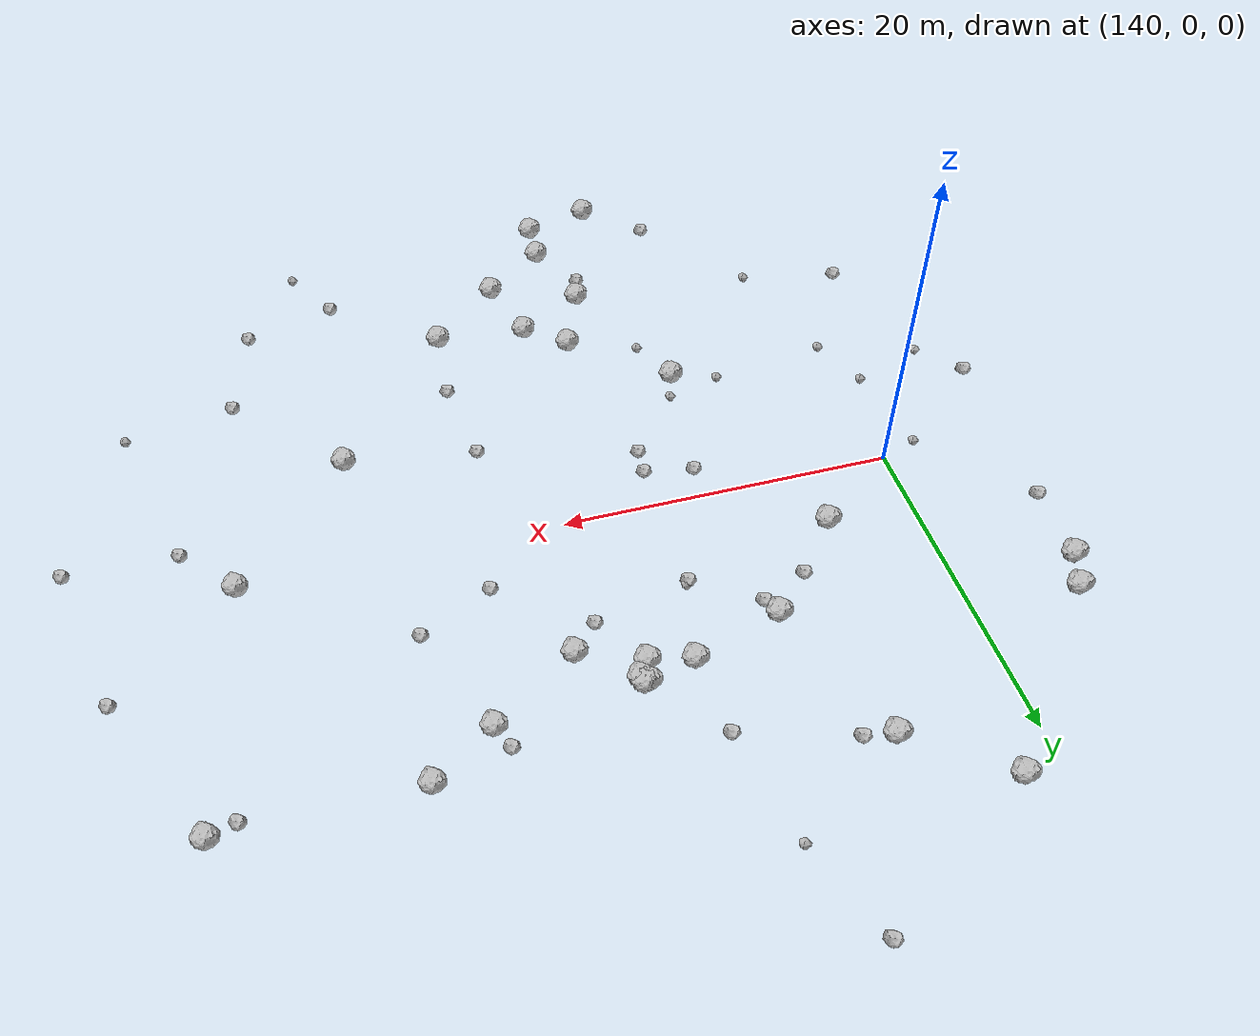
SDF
<sdf version="1.6">
 <world name="default">
  <include><uri>model://sun</uri></include>
  <model name="rock1_4_1">
   <include><uri>model://rock1</uri><pose>159.3210783388388 -21.37944250901318 0.5 0 0 0</pose></include>
  </model>
  <model name="rock1_4_2">
   <include><uri>model://rock1</uri><pose>155.2083952248455 -26.996227235726526 0.5 0 0 0</pose></include>
  </model>
  <model name="rock1_4_3">
   <include><uri>model://rock1</uri><pose>151.06715657905536 -28.075674261840554 0.5 0 0 0</pose></include>
  </model>
  <model name="rock1_4_4">
   <include><uri>model://rock1</uri><pose>163.74902479352477 -17.487424442770198 0.5 0 0 0</pose></include>
  </model>
  <model name="rock1_4_5">
   <include><uri>model://rock1</uri><pose>142.23909911705744 22.40788133628059 0.5 0 0 0</pose></include>
  </model>
  <model name="rock1_4_6">
   <include><uri>model://rock1</uri><pose>178.89770712781143 -0.19571395544387116 0.5 0 0 0</pose></include>
  </model>
  <model name="rock1_4_7">
   <include><uri>model://rock1</uri><pose>155.41850540828347 -24.299007998440178 0.5 0 0 0</pose></include>
  </model>
  <model name="rock1_4_8">
   <include><uri>model://rock1</uri><pose>150.4276928243802 9.52183680588417 0.5 0 0 0</pose></include>
  </model>
  <model name="rock1_4_9">
   <include><uri>model://rock1</uri><pose>182.15821374107946 15.120570566795287 0.5 0 0 0</pose></include>
  </model>
  <model name="rock1_4_10">
   <include><uri>model://rock1</uri><pose>158.6994122277445 11.99885478593707 0.5 0 0 0</pose></include>
  </model>
  <model name="rock1_4_11">
   <include><uri>model://rock1</uri><pose>158.35551082620867 10.675402005799043 0.5 0 0 0</pose></include>
  </model>
  <model name="rock1_4_12">
   <include><uri>model://rock1</uri><pose>145.28740483399966 3.9067941174685785 0.5 0 0 0</pose></include>
  </model>
  <model name="rock1_4_13">
   <include><uri>model://rock1</uri><pose>171.48690544647528 -8.186693173737652 0.5 0 0 0</pose></include>
  </model>
  <model name="rock1_4_14">
   <include><uri>model://rock1</uri><pose>150.23747949818338 -10.228269592739167 0.5 0 0 0</pose></include>
  </model>
  <model name="rock1_4_15">
   <include><uri>model://rock1</uri><pose>147.4256373018215 18.49446469608727 0.5 0 0 0</pose></include>
  </model>
  <model name="rock1_4_16">
   <include><uri>model://rock1</uri><pose>155.7561417942777 -14.912656612078578 0.5 0 0 0</pose></include>
  </model>
  <model name="rock1_4_17">
   <include><uri>model://rock1</uri><pose>158.90689722198627 12.048514588726412 0.5 0 0 0</pose></include>
  </model>
  <model name="rock1_4_18">
   <include><uri>model://rock1</uri><pose>158.1790389021071 -16.922761613431682 0.5 0 0 0</pose></include>
  </model>
  <model name="rock1_4_19">
   <include><uri>model://rock1</uri><pose>167.17935125481506 12.554108678580313 0.5 0 0 0</pose></include>
  </model>
  <model name="rock1_4_20">
   <include><uri>model://rock1</uri><pose>132.84434757050582 10.021053890323152 0.5 0 0 0</pose></include>
  </model>
  <model name="rock1_4_21">
   <include><uri>model://rock1</uri><pose>170.9175032742 15.04307537186751 0.5 0 0 0</pose></include>
  </model>
  <model name="rock1_4_22">
   <include><uri>model://rock1</uri><pose>153.9689127261104 -19.261680195191296 0.5 0 0 0</pose></include>
  </model>
  <model name="rock1_4_23">
   <include><uri>model://rock1</uri><pose>155.83977134806352 11.253326498352507 0.5 0 0 0</pose></include>
  </model>
  <model name="rock1_4_24">
   <include><uri>model://rock1</uri><pose>133.6688202154591 12.187179141758975 0.5 0 0 0</pose></include>
  </model>
  <model name="rock1_4_25">
   <include><uri>model://rock1</uri><pose>159.0265675388273 11.669826680878792 0.5 0 0 0</pose></include>
  </model>
  <model name="rock1_4_26">
   <include><uri>model://rock1</uri><pose>161.95067270933856 9.158708566426633 0.5 0 0 0</pose></include>
  </model>
  <model name="rock2_4_0">
   <include><uri>model://rock2</uri><pose>166.60064528363378 14.013273598755113 0.3 0 0 0</pose></include>
  </model>
  <model name="rock2_4_1">
   <include><uri>model://rock2</uri><pose>188.18264132403382 -3.566294837692933 0.3 0 0 0</pose></include>
  </model>
  <model name="rock2_4_2">
   <include><uri>model://rock2</uri><pose>169.65772756610892 5.817455390258743 0.3 0 0 0</pose></include>
  </model>
  <model name="rock2_4_3">
   <include><uri>model://rock2</uri><pose>151.42737655248493 -2.05430107668246 0.3 0 0 0</pose></include>
  </model>
  <model name="rock2_4_4">
   <include><uri>model://rock2</uri><pose>149.12374150607164 18.16756947623987 0.3 0 0 0</pose></include>
  </model>
  <model name="rock2_4_5">
   <include><uri>model://rock2</uri><pose>160.326601090752 7.501435862931167 0.3 0 0 0</pose></include>
  </model>
  <model name="rock2_4_6">
   <include><uri>model://rock2</uri><pose>150.8876751633665 8.477664459136989 0.3 0 0 0</pose></include>
  </model>
  <model name="rock2_4_7">
   <include><uri>model://rock2</uri><pose>165.27055930195874 3.6621795529837087 0.3 0 0 0</pose></include>
  </model>
  <model name="rock2_4_8">
   <include><uri>model://rock2</uri><pose>163.58745085935766 -6.906211529848015 0.3 0 0 0</pose></include>
  </model>
  <model name="rock2_4_9">
   <include><uri>model://rock2</uri><pose>155.52116699903814 16.177238460170216 0.3 0 0 0</pose></include>
  </model>
  <model name="rock2_4_10">
   <include><uri>model://rock2</uri><pose>147.63887359953338 -24.980609941547435 0.3 0 0 0</pose></include>
  </model>
  <model name="rock2_4_11">
   <include><uri>model://rock2</uri><pose>177.35895357378928 -14.611519350219693 0.3 0 0 0</pose></include>
  </model>
  <model name="rock2_4_12">
   <include><uri>model://rock2</uri><pose>164.19630845626347 -12.537937140353968 0.3 0 0 0</pose></include>
  </model>
  <model name="rock2_4_13">
   <include><uri>model://rock2</uri><pose>132.07191900073624 -5.795436019848449 0.3 0 0 0</pose></include>
  </model>
  <model name="rock2_4_14">
   <include><uri>model://rock2</uri><pose>170.01652068398676 -22.368812556758133 0.3 0 0 0</pose></include>
  </model>
  <model name="rock2_4_15">
   <include><uri>model://rock2</uri><pose>181.67231045514694 -3.3721176460843907 0.3 0 0 0</pose></include>
  </model>
  <model name="rock2_4_16">
   <include><uri>model://rock2</uri><pose>154.21031443882598 -4.301630386010331 0.3 0 0 0</pose></include>
  </model>
  <model name="rock2_4_17">
   <include><uri>model://rock2</uri><pose>136.44891283030555 -16.914688516577915 0.3 0 0 0</pose></include>
  </model>
  <model name="rock2_4_18">
   <include><uri>model://rock2</uri><pose>180.53910140792533 14.631201179322574 0.3 0 0 0</pose></include>
  </model>
  <model name="rock2_4_19">
   <include><uri>model://rock2</uri><pose>148.03681543983552 7.219390267885679 0.3 0 0 0</pose></include>
  </model>
  <model name="rock2_4_20">
   <include><uri>model://rock2</uri><pose>152.16471973080186 28.824861375646776 0.3 0 0 0</pose></include>
  </model>
  <model name="rock2_4_21">
   <include><uri>model://rock2</uri><pose>154.36944873419907 -2.6284979141229634 0.3 0 0 0</pose></include>
  </model>
  <model name="rock2_4_22">
   <include><uri>model://rock2</uri><pose>175.59826870713064 -20.79590565070726 0.3 0 0 0</pose></include>
  </model>
  <model name="rock2_4_23">
   <include><uri>model://rock2</uri><pose>154.48122055077337 6.023682157743778 0.3 0 0 0</pose></include>
  </model>
  <model name="rock2_4_24">
   <include><uri>model://rock2</uri><pose>132.57549868074122 5.257215882181505 0.3 0 0 0</pose></include>
  </model>
  <model name="rock2_4_25">
   <include><uri>model://rock2</uri><pose>186.23597539650183 5.990994513616336 0.3 0 0 0</pose></include>
  </model>
  <model name="rock2_4_26">
   <include><uri>model://rock2</uri><pose>153.46316830190722 -20.89678139859471 0.3 0 0 0</pose></include>
  </model>
  <model name="rock3_4_0">
   <include><uri>model://rock3</uri><pose>154.21501397044 23.071091333168262 0.2 0 0 0</pose></include>
  </model>
  <model name="rock3_4_1">
   <include><uri>model://rock3</uri><pose>150.77913298990507 -8.479016792834681 0.2 0 0 0</pose></include>
  </model>
  <model name="rock3_4_2">
   <include><uri>model://rock3</uri><pose>134.2196317761112 -8.402861276729105 0.2 0 0 0</pose></include>
  </model>
  <model name="rock3_4_3">
   <include><uri>model://rock3</uri><pose>142.39565771207114 -18.273572330372765 0.2 0 0 0</pose></include>
  </model>
  <model name="rock3_4_4">
   <include><uri>model://rock3</uri><pose>137.73304548964265 -0.8206831696357995 0.2 0 0 0</pose></include>
  </model>
  <model name="rock3_4_5">
   <include><uri>model://rock3</uri><pose>138.69016154807517 -6.783924073711244 0.2 0 0 0</pose></include>
  </model>
  <model name="rock3_4_6">
   <include><uri>model://rock3</uri><pose>147.4106523702964 -9.373812126989119 0.2 0 0 0</pose></include>
  </model>
  <model name="rock3_4_7">
   <include><uri>model://rock3</uri><pose>183.95791435321644 -13.496982618963202 0.2 0 0 0</pose></include>
  </model>
  <model name="rock3_4_8">
   <include><uri>model://rock3</uri><pose>154.60451603244064 6.207158548164095 0.2 0 0 0</pose></include>
  </model>
  <model name="rock3_4_9">
   <include><uri>model://rock3</uri><pose>171.95030308153133 -26.084649807533207 0.2 0 0 0</pose></include>
  </model>
  <model name="rock3_4_10">
   <include><uri>model://rock3</uri><pose>140.15935826656747 -10.33145296052816 0.2 0 0 0</pose></include>
  </model>
  <model name="rock3_4_11">
   <include><uri>model://rock3</uri><pose>151.46943369841517 -13.358278140971308 0.2 0 0 0</pose></include>
  </model>
 </world>
</sdf>
